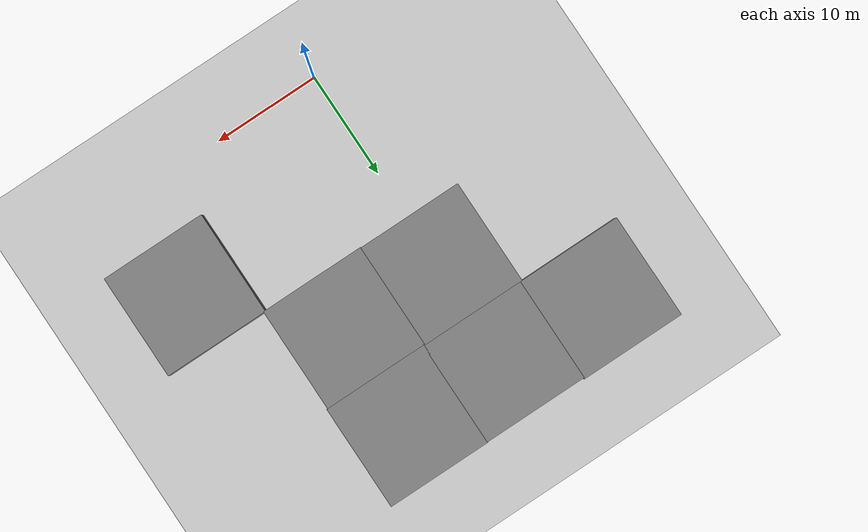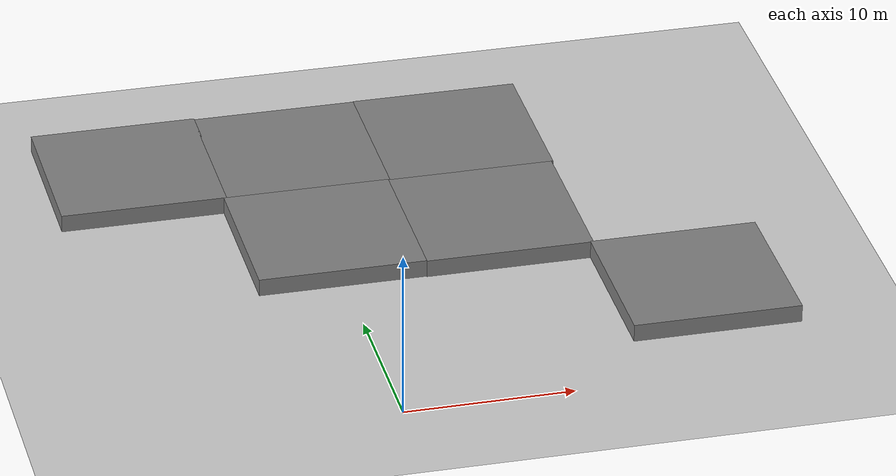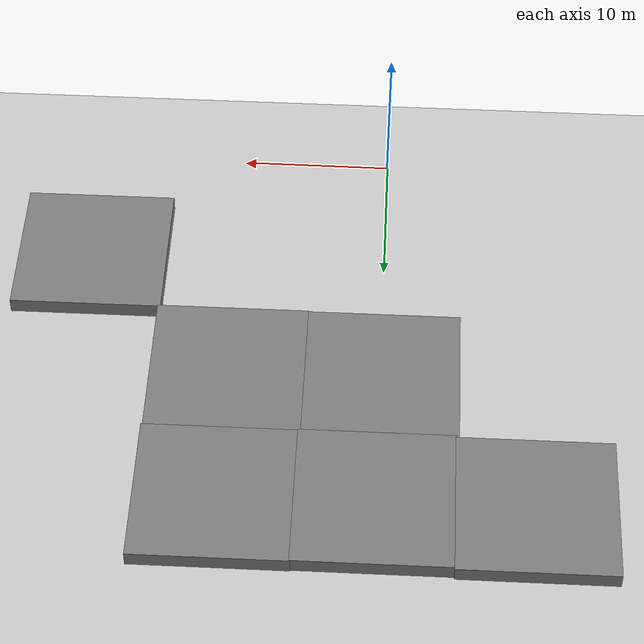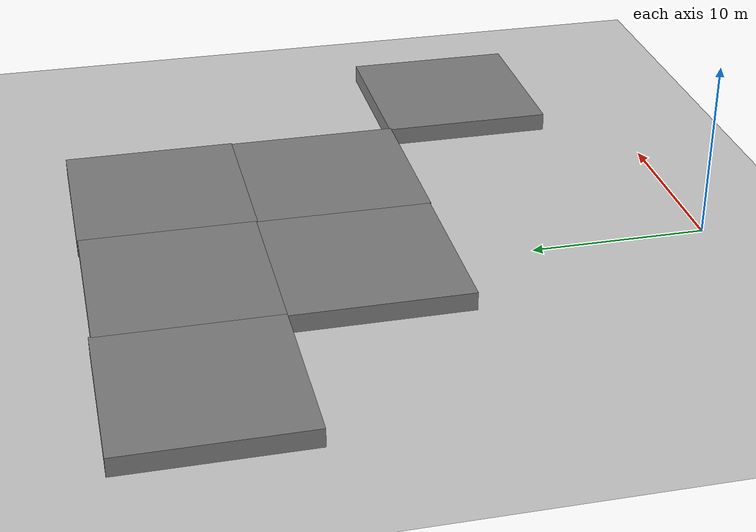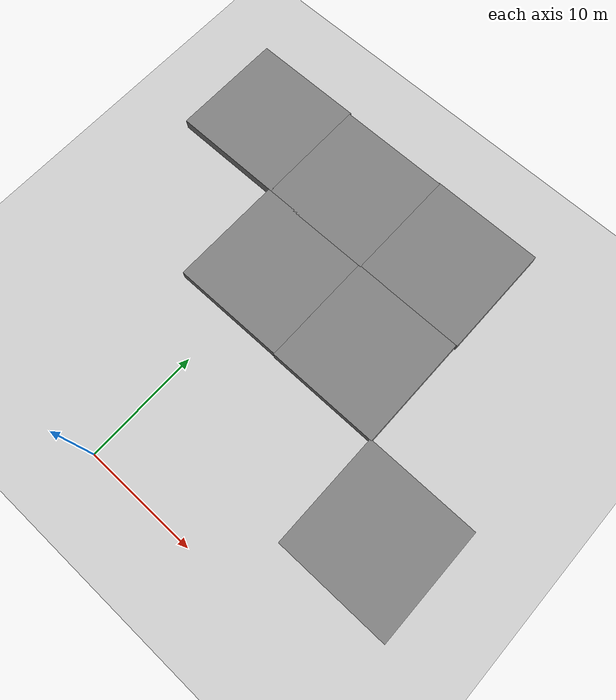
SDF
<sdf version="1.7">
 <world name="default">
  <model name="ground_plane">
   <static>1</static>
   <link name="link">
    <collision name="collision">
     <geometry><plane><normal>0 0 1</normal><size>100 100</size></plane></geometry>
     <surface>
      <contact><collide_bitmask>65535</collide_bitmask></contact>
      <friction><ode><mu>100</mu><mu2>50</mu2></ode></friction>
     </surface>
    </collision>
    <visual name="visual">
     <cast_shadows>0</cast_shadows>
     <geometry><plane><normal>0 0 1</normal><size>100 100</size></plane></geometry>
     <material>
      <script><uri>file://media/materials/scripts/gazebo.material</uri><name>Gazebo/Grey</name></script>
     </material>
    </visual>
   </link>
  </model>
  <model name="farm_clone_0_clone_1_clone_1_clone_19">
   <link name="link">
    <inertial>
     <mass>1</mass>
     <inertia><ixx>1</ixx><ixy>0</ixy><ixz>0</ixz><iyy>1</iyy><iyz>0</iyz><izz>1</izz></inertia>
    </inertial>
    <visual name="visual_1">
     <pose>2 2.5 0 0 -0 0</pose>
     <cast_shadows>0</cast_shadows>
     <geometry><box><size>10 10 2</size></box></geometry>
     <material>
      <script>
       <uri>model://mud_box/materials/scripts</uri>
       <uri>model://mud_box/materials/textures</uri>
       <name>vrc/mud</name>
      </script>
      <shader type="pixel"><normal_map>__default__</normal_map></shader>
      <ambient>0.5 0.5 0.5 1</ambient>
      <diffuse>0.5 0.5 0.5 1</diffuse>
      <specular>0.2 0.2 0.2 1</specular>
      <emissive>0 0 0 1</emissive>
     </material>
    </visual>
    <visual name="visual_2">
     <pose>2 2.5 0 0 -0 0</pose>
     <cast_shadows>0</cast_shadows>
     <geometry><box><size>10 10 2</size></box></geometry>
     <material>
      <script>
       <uri>model://mud_box/materials/scripts</uri>
       <uri>model://mud_box/materials/textures</uri>
       <name>vrc/mud</name>
      </script>
      <shader type="pixel"><normal_map>__default__</normal_map></shader>
      <ambient>0.5 0.5 0.5 1</ambient>
      <diffuse>0.5 0.5 0.5 1</diffuse>
      <specular>0.2 0.2 0.2 1</specular>
      <emissive>0 0 0 1</emissive>
     </material>
    </visual>
    <visual name="visual_4">
     <pose>2 2.5 0 0 -0 0</pose>
     <cast_shadows>0</cast_shadows>
     <geometry><box><size>10 10 2</size></box></geometry>
     <material>
      <script>
       <uri>model://mud_box/materials/scripts</uri>
       <uri>model://mud_box/materials/textures</uri>
       <name>vrc/mud</name>
      </script>
      <shader type="pixel"><normal_map>__default__</normal_map></shader>
      <ambient>0.5 0.5 0.5 1</ambient>
      <diffuse>0.5 0.5 0.5 1</diffuse>
      <specular>0.2 0.2 0.2 1</specular>
      <emissive>0 0 0 1</emissive>
     </material>
    </visual>
    <visual name="visual_3">
     <pose>2 2.5 0 0 -0 0</pose>
     <cast_shadows>0</cast_shadows>
     <geometry><box><size>10 10 2</size></box></geometry>
     <material>
      <script>
       <uri>model://mud_box/materials/scripts</uri>
       <uri>model://mud_box/materials/textures</uri>
       <name>vrc/mud</name>
      </script>
      <shader type="pixel"><normal_map>__default__</normal_map></shader>
      <ambient>0.5 0.5 0.5 1</ambient>
      <diffuse>0.5 0.5 0.5 1</diffuse>
      <specular>0.2 0.2 0.2 1</specular>
      <emissive>0 0 0 1</emissive>
     </material>
    </visual>
    <collision name="collision">
     <laser_retro>0.3</laser_retro>
     <pose>2 2.5 0 0 -0 0</pose>
     <geometry><box><size>100 100 2</size></box></geometry>
     <surface>
      <friction>
       <ode><mu>1.2</mu><mu2>1.2</mu2><fdir1>0 0 0</fdir1><slip1>0.01</slip1><slip2>0.01</slip2></ode>
       <torsional>
        <coefficient>0.05</coefficient>
        <patch_radius>0.08</patch_radius>
        <surface_radius>0.05</surface_radius>
        <use_patch_radius>1</use_patch_radius>
        <ode><slip>0</slip></ode>
       </torsional>
      </friction>
      <bounce><restitution_coefficient>0</restitution_coefficient><threshold>1</threshold></bounce>
      <contact>
       <collide_without_contact>0</collide_without_contact>
       <collide_without_contact_bitmask>1</collide_without_contact_bitmask>
       <collide_bitmask>1</collide_bitmask>
       <ode>
        <soft_cfm>0</soft_cfm>
        <soft_erp>1</soft_erp>
        <kp>1e+07</kp>
        <kd>5000</kd>
        <max_vel>0.001</max_vel>
        <min_depth>0.0005</min_depth>
       </ode>
       <bullet>
        <split_impulse>1</split_impulse>
        <split_impulse_penetration_threshold>-0.01</split_impulse_penetration_threshold>
        <soft_cfm>0</soft_cfm>
        <soft_erp>1</soft_erp>
        <kp>1e+07</kp>
        <kd>5000</kd>
       </bullet>
      </contact>
     </surface>
    </collision>
   </link>
   <static>1</static>
   <pose>17.6547 7.17456 0 0 -0 0</pose>
  </model>
  <model name="farm_clone_0_clone_1_clone_1_clone_22">
   <link name="link">
    <inertial>
     <mass>1</mass>
     <inertia><ixx>1</ixx><ixy>0</ixy><ixz>0</ixz><iyy>1</iyy><iyz>0</iyz><izz>1</izz></inertia>
    </inertial>
    <visual name="visual_1">
     <pose>2 2.5 0 0 -0 0</pose>
     <cast_shadows>0</cast_shadows>
     <geometry><box><size>10 10 2</size></box></geometry>
     <material>
      <script>
       <uri>model://mud_box/materials/scripts</uri>
       <uri>model://mud_box/materials/textures</uri>
       <name>vrc/mud</name>
      </script>
      <shader type="pixel"><normal_map>__default__</normal_map></shader>
      <ambient>0.5 0.5 0.5 1</ambient>
      <diffuse>0.5 0.5 0.5 1</diffuse>
      <specular>0.2 0.2 0.2 1</specular>
      <emissive>0 0 0 1</emissive>
     </material>
    </visual>
    <visual name="visual_2">
     <pose>2 2.5 0 0 -0 0</pose>
     <cast_shadows>0</cast_shadows>
     <geometry><box><size>10 10 2</size></box></geometry>
     <material>
      <script>
       <uri>model://mud_box/materials/scripts</uri>
       <uri>model://mud_box/materials/textures</uri>
       <name>vrc/mud</name>
      </script>
      <shader type="pixel"><normal_map>__default__</normal_map></shader>
      <ambient>0.5 0.5 0.5 1</ambient>
      <diffuse>0.5 0.5 0.5 1</diffuse>
      <specular>0.2 0.2 0.2 1</specular>
      <emissive>0 0 0 1</emissive>
     </material>
    </visual>
    <visual name="visual_4">
     <pose>2 2.5 0 0 -0 0</pose>
     <cast_shadows>0</cast_shadows>
     <geometry><box><size>10 10 2</size></box></geometry>
     <material>
      <script>
       <uri>model://mud_box/materials/scripts</uri>
       <uri>model://mud_box/materials/textures</uri>
       <name>vrc/mud</name>
      </script>
      <shader type="pixel"><normal_map>__default__</normal_map></shader>
      <ambient>0.5 0.5 0.5 1</ambient>
      <diffuse>0.5 0.5 0.5 1</diffuse>
      <specular>0.2 0.2 0.2 1</specular>
      <emissive>0 0 0 1</emissive>
     </material>
    </visual>
    <visual name="visual_3">
     <pose>2 2.5 0 0 -0 0</pose>
     <cast_shadows>0</cast_shadows>
     <geometry><box><size>10 10 2</size></box></geometry>
     <material>
      <script>
       <uri>model://mud_box/materials/scripts</uri>
       <uri>model://mud_box/materials/textures</uri>
       <name>vrc/mud</name>
      </script>
      <shader type="pixel"><normal_map>__default__</normal_map></shader>
      <ambient>0.5 0.5 0.5 1</ambient>
      <diffuse>0.5 0.5 0.5 1</diffuse>
      <specular>0.2 0.2 0.2 1</specular>
      <emissive>0 0 0 1</emissive>
     </material>
    </visual>
    <collision name="collision">
     <laser_retro>0.3</laser_retro>
     <pose>2 2.5 0 0 -0 0</pose>
     <geometry><box><size>100 100 2</size></box></geometry>
     <surface>
      <friction>
       <ode><mu>1.2</mu><mu2>1.2</mu2><fdir1>0 0 0</fdir1><slip1>0.01</slip1><slip2>0.01</slip2></ode>
       <torsional>
        <coefficient>0.05</coefficient>
        <patch_radius>0.08</patch_radius>
        <surface_radius>0.05</surface_radius>
        <use_patch_radius>1</use_patch_radius>
        <ode><slip>0</slip></ode>
       </torsional>
      </friction>
      <bounce><restitution_coefficient>0</restitution_coefficient><threshold>1</threshold></bounce>
      <contact>
       <collide_without_contact>0</collide_without_contact>
       <collide_without_contact_bitmask>1</collide_without_contact_bitmask>
       <collide_bitmask>1</collide_bitmask>
       <ode>
        <soft_cfm>0</soft_cfm>
        <soft_erp>1</soft_erp>
        <kp>1e+07</kp>
        <kd>5000</kd>
        <max_vel>0.001</max_vel>
        <min_depth>0.0005</min_depth>
       </ode>
       <bullet>
        <split_impulse>1</split_impulse>
        <split_impulse_penetration_threshold>-0.01</split_impulse_penetration_threshold>
        <soft_cfm>0</soft_cfm>
        <soft_erp>1</soft_erp>
        <kp>1e+07</kp>
        <kd>5000</kd>
       </bullet>
      </contact>
     </surface>
    </collision>
   </link>
   <static>1</static>
   <pose>-2.15251 17.1455 0 0 -0 0</pose>
  </model>
  <model name="farm_clone_0_clone_1_clone_1_clone_23">
   <link name="link">
    <inertial>
     <mass>1</mass>
     <inertia><ixx>1</ixx><ixy>0</ixy><ixz>0</ixz><iyy>1</iyy><iyz>0</iyz><izz>1</izz></inertia>
    </inertial>
    <visual name="visual_1">
     <pose>2 2.5 0 0 -0 0</pose>
     <cast_shadows>0</cast_shadows>
     <geometry><box><size>10 10 2</size></box></geometry>
     <material>
      <script>
       <uri>model://mud_box/materials/scripts</uri>
       <uri>model://mud_box/materials/textures</uri>
       <name>vrc/mud</name>
      </script>
      <shader type="pixel"><normal_map>__default__</normal_map></shader>
      <ambient>0.5 0.5 0.5 1</ambient>
      <diffuse>0.5 0.5 0.5 1</diffuse>
      <specular>0.2 0.2 0.2 1</specular>
      <emissive>0 0 0 1</emissive>
     </material>
    </visual>
    <visual name="visual_2">
     <pose>2 2.5 0 0 -0 0</pose>
     <cast_shadows>0</cast_shadows>
     <geometry><box><size>10 10 2</size></box></geometry>
     <material>
      <script>
       <uri>model://mud_box/materials/scripts</uri>
       <uri>model://mud_box/materials/textures</uri>
       <name>vrc/mud</name>
      </script>
      <shader type="pixel"><normal_map>__default__</normal_map></shader>
      <ambient>0.5 0.5 0.5 1</ambient>
      <diffuse>0.5 0.5 0.5 1</diffuse>
      <specular>0.2 0.2 0.2 1</specular>
      <emissive>0 0 0 1</emissive>
     </material>
    </visual>
    <visual name="visual_4">
     <pose>2 2.5 0 0 -0 0</pose>
     <cast_shadows>0</cast_shadows>
     <geometry><box><size>10 10 2</size></box></geometry>
     <material>
      <script>
       <uri>model://mud_box/materials/scripts</uri>
       <uri>model://mud_box/materials/textures</uri>
       <name>vrc/mud</name>
      </script>
      <shader type="pixel"><normal_map>__default__</normal_map></shader>
      <ambient>0.5 0.5 0.5 1</ambient>
      <diffuse>0.5 0.5 0.5 1</diffuse>
      <specular>0.2 0.2 0.2 1</specular>
      <emissive>0 0 0 1</emissive>
     </material>
    </visual>
    <visual name="visual_3">
     <pose>2 2.5 0 0 -0 0</pose>
     <cast_shadows>0</cast_shadows>
     <geometry><box><size>10 10 2</size></box></geometry>
     <material>
      <script>
       <uri>model://mud_box/materials/scripts</uri>
       <uri>model://mud_box/materials/textures</uri>
       <name>vrc/mud</name>
      </script>
      <shader type="pixel"><normal_map>__default__</normal_map></shader>
      <ambient>0.5 0.5 0.5 1</ambient>
      <diffuse>0.5 0.5 0.5 1</diffuse>
      <specular>0.2 0.2 0.2 1</specular>
      <emissive>0 0 0 1</emissive>
     </material>
    </visual>
    <collision name="collision">
     <laser_retro>0.3</laser_retro>
     <pose>2 2.5 0 0 -0 0</pose>
     <geometry><box><size>100 100 2</size></box></geometry>
     <surface>
      <friction>
       <ode><mu>1.2</mu><mu2>1.2</mu2><fdir1>0 0 0</fdir1><slip1>0.01</slip1><slip2>0.01</slip2></ode>
       <torsional>
        <coefficient>0.05</coefficient>
        <patch_radius>0.08</patch_radius>
        <surface_radius>0.05</surface_radius>
        <use_patch_radius>1</use_patch_radius>
        <ode><slip>0</slip></ode>
       </torsional>
      </friction>
      <bounce><restitution_coefficient>0</restitution_coefficient><threshold>1</threshold></bounce>
      <contact>
       <collide_without_contact>0</collide_without_contact>
       <collide_without_contact_bitmask>1</collide_without_contact_bitmask>
       <collide_bitmask>1</collide_bitmask>
       <ode>
        <soft_cfm>0</soft_cfm>
        <soft_erp>1</soft_erp>
        <kp>1e+07</kp>
        <kd>5000</kd>
        <max_vel>0.001</max_vel>
        <min_depth>0.0005</min_depth>
       </ode>
       <bullet>
        <split_impulse>1</split_impulse>
        <split_impulse_penetration_threshold>-0.01</split_impulse_penetration_threshold>
        <soft_cfm>0</soft_cfm>
        <soft_erp>1</soft_erp>
        <kp>1e+07</kp>
        <kd>5000</kd>
       </bullet>
      </contact>
     </surface>
    </collision>
   </link>
   <static>1</static>
   <pose>7.83272 17.0868 0 0 -0 0</pose>
  </model>
  <model name="farm_clone_0_clone_1_clone_1_clone_49">
   <link name="link">
    <inertial>
     <mass>1</mass>
     <inertia><ixx>1</ixx><ixy>0</ixy><ixz>0</ixz><iyy>1</iyy><iyz>0</iyz><izz>1</izz></inertia>
    </inertial>
    <visual name="visual_1">
     <pose>2 2.5 0 0 -0 0</pose>
     <cast_shadows>0</cast_shadows>
     <geometry><box><size>10 10 2</size></box></geometry>
     <material>
      <script>
       <uri>model://mud_box/materials/scripts</uri>
       <uri>model://mud_box/materials/textures</uri>
       <name>vrc/mud</name>
      </script>
      <shader type="pixel"><normal_map>__default__</normal_map></shader>
      <ambient>0.5 0.5 0.5 1</ambient>
      <diffuse>0.5 0.5 0.5 1</diffuse>
      <specular>0.2 0.2 0.2 1</specular>
      <emissive>0 0 0 1</emissive>
     </material>
    </visual>
    <visual name="visual_2">
     <pose>2 2.5 0 0 -0 0</pose>
     <cast_shadows>0</cast_shadows>
     <geometry><box><size>10 10 2</size></box></geometry>
     <material>
      <script>
       <uri>model://mud_box/materials/scripts</uri>
       <uri>model://mud_box/materials/textures</uri>
       <name>vrc/mud</name>
      </script>
      <shader type="pixel"><normal_map>__default__</normal_map></shader>
      <ambient>0.5 0.5 0.5 1</ambient>
      <diffuse>0.5 0.5 0.5 1</diffuse>
      <specular>0.2 0.2 0.2 1</specular>
      <emissive>0 0 0 1</emissive>
     </material>
    </visual>
    <visual name="visual_4">
     <pose>2 2.5 0 0 -0 0</pose>
     <cast_shadows>0</cast_shadows>
     <geometry><box><size>10 10 2</size></box></geometry>
     <material>
      <script>
       <uri>model://mud_box/materials/scripts</uri>
       <uri>model://mud_box/materials/textures</uri>
       <name>vrc/mud</name>
      </script>
      <shader type="pixel"><normal_map>__default__</normal_map></shader>
      <ambient>0.5 0.5 0.5 1</ambient>
      <diffuse>0.5 0.5 0.5 1</diffuse>
      <specular>0.2 0.2 0.2 1</specular>
      <emissive>0 0 0 1</emissive>
     </material>
    </visual>
    <visual name="visual_3">
     <pose>2 2.5 0 0 -0 0</pose>
     <cast_shadows>0</cast_shadows>
     <geometry><box><size>10 10 2</size></box></geometry>
     <material>
      <script>
       <uri>model://mud_box/materials/scripts</uri>
       <uri>model://mud_box/materials/textures</uri>
       <name>vrc/mud</name>
      </script>
      <shader type="pixel"><normal_map>__default__</normal_map></shader>
      <ambient>0.5 0.5 0.5 1</ambient>
      <diffuse>0.5 0.5 0.5 1</diffuse>
      <specular>0.2 0.2 0.2 1</specular>
      <emissive>0 0 0 1</emissive>
     </material>
    </visual>
    <collision name="collision">
     <laser_retro>0.3</laser_retro>
     <pose>2 2.5 0 0 -0 0</pose>
     <geometry><box><size>100 100 2</size></box></geometry>
     <surface>
      <friction>
       <ode><mu>1.2</mu><mu2>1.2</mu2><fdir1>0 0 0</fdir1><slip1>0.01</slip1><slip2>0.01</slip2></ode>
       <torsional>
        <coefficient>0.05</coefficient>
        <patch_radius>0.08</patch_radius>
        <surface_radius>0.05</surface_radius>
        <use_patch_radius>1</use_patch_radius>
        <ode><slip>0</slip></ode>
       </torsional>
      </friction>
      <bounce><restitution_coefficient>0</restitution_coefficient><threshold>1</threshold></bounce>
      <contact>
       <collide_without_contact>0</collide_without_contact>
       <collide_without_contact_bitmask>1</collide_without_contact_bitmask>
       <collide_bitmask>1</collide_bitmask>
       <ode>
        <soft_cfm>0</soft_cfm>
        <soft_erp>1</soft_erp>
        <kp>1e+07</kp>
        <kd>5000</kd>
        <max_vel>0.001</max_vel>
        <min_depth>0.0005</min_depth>
       </ode>
       <bullet>
        <split_impulse>1</split_impulse>
        <split_impulse_penetration_threshold>-0.01</split_impulse_penetration_threshold>
        <soft_cfm>0</soft_cfm>
        <soft_erp>1</soft_erp>
        <kp>1e+07</kp>
        <kd>5000</kd>
       </bullet>
      </contact>
     </surface>
    </collision>
   </link>
   <static>1</static>
   <pose>7.93224 27.0699 0 0 -0 0</pose>
  </model>
  <model name="farm_clone_0_clone_1_clone_1_clone_50">
   <link name="link">
    <inertial>
     <mass>1</mass>
     <inertia><ixx>1</ixx><ixy>0</ixy><ixz>0</ixz><iyy>1</iyy><iyz>0</iyz><izz>1</izz></inertia>
    </inertial>
    <visual name="visual_1">
     <pose>2 2.5 0 0 -0 0</pose>
     <cast_shadows>0</cast_shadows>
     <geometry><box><size>10 10 2</size></box></geometry>
     <material>
      <script>
       <uri>model://mud_box/materials/scripts</uri>
       <uri>model://mud_box/materials/textures</uri>
       <name>vrc/mud</name>
      </script>
      <shader type="pixel"><normal_map>__default__</normal_map></shader>
      <ambient>0.5 0.5 0.5 1</ambient>
      <diffuse>0.5 0.5 0.5 1</diffuse>
      <specular>0.2 0.2 0.2 1</specular>
      <emissive>0 0 0 1</emissive>
     </material>
    </visual>
    <visual name="visual_2">
     <pose>2 2.5 0 0 -0 0</pose>
     <cast_shadows>0</cast_shadows>
     <geometry><box><size>10 10 2</size></box></geometry>
     <material>
      <script>
       <uri>model://mud_box/materials/scripts</uri>
       <uri>model://mud_box/materials/textures</uri>
       <name>vrc/mud</name>
      </script>
      <shader type="pixel"><normal_map>__default__</normal_map></shader>
      <ambient>0.5 0.5 0.5 1</ambient>
      <diffuse>0.5 0.5 0.5 1</diffuse>
      <specular>0.2 0.2 0.2 1</specular>
      <emissive>0 0 0 1</emissive>
     </material>
    </visual>
    <visual name="visual_4">
     <pose>2 2.5 0 0 -0 0</pose>
     <cast_shadows>0</cast_shadows>
     <geometry><box><size>10 10 2</size></box></geometry>
     <material>
      <script>
       <uri>model://mud_box/materials/scripts</uri>
       <uri>model://mud_box/materials/textures</uri>
       <name>vrc/mud</name>
      </script>
      <shader type="pixel"><normal_map>__default__</normal_map></shader>
      <ambient>0.5 0.5 0.5 1</ambient>
      <diffuse>0.5 0.5 0.5 1</diffuse>
      <specular>0.2 0.2 0.2 1</specular>
      <emissive>0 0 0 1</emissive>
     </material>
    </visual>
    <visual name="visual_3">
     <pose>2 2.5 0 0 -0 0</pose>
     <cast_shadows>0</cast_shadows>
     <geometry><box><size>10 10 2</size></box></geometry>
     <material>
      <script>
       <uri>model://mud_box/materials/scripts</uri>
       <uri>model://mud_box/materials/textures</uri>
       <name>vrc/mud</name>
      </script>
      <shader type="pixel"><normal_map>__default__</normal_map></shader>
      <ambient>0.5 0.5 0.5 1</ambient>
      <diffuse>0.5 0.5 0.5 1</diffuse>
      <specular>0.2 0.2 0.2 1</specular>
      <emissive>0 0 0 1</emissive>
     </material>
    </visual>
    <collision name="collision">
     <laser_retro>0.3</laser_retro>
     <pose>2 2.5 0 0 -0 0</pose>
     <geometry><box><size>100 100 2</size></box></geometry>
     <surface>
      <friction>
       <ode><mu>1.2</mu><mu2>1.2</mu2><fdir1>0 0 0</fdir1><slip1>0.01</slip1><slip2>0.01</slip2></ode>
       <torsional>
        <coefficient>0.05</coefficient>
        <patch_radius>0.08</patch_radius>
        <surface_radius>0.05</surface_radius>
        <use_patch_radius>1</use_patch_radius>
        <ode><slip>0</slip></ode>
       </torsional>
      </friction>
      <bounce><restitution_coefficient>0</restitution_coefficient><threshold>1</threshold></bounce>
      <contact>
       <collide_without_contact>0</collide_without_contact>
       <collide_without_contact_bitmask>1</collide_without_contact_bitmask>
       <collide_bitmask>1</collide_bitmask>
       <ode>
        <soft_cfm>0</soft_cfm>
        <soft_erp>1</soft_erp>
        <kp>1e+07</kp>
        <kd>5000</kd>
        <max_vel>0.001</max_vel>
        <min_depth>0.0005</min_depth>
       </ode>
       <bullet>
        <split_impulse>1</split_impulse>
        <split_impulse_penetration_threshold>-0.01</split_impulse_penetration_threshold>
        <soft_cfm>0</soft_cfm>
        <soft_erp>1</soft_erp>
        <kp>1e+07</kp>
        <kd>5000</kd>
       </bullet>
      </contact>
     </surface>
    </collision>
   </link>
   <static>1</static>
   <pose>-1.97399 27.0202 0 0 -0 0</pose>
  </model>
  <model name="farm_clone_0_clone_1_clone_1_clone_51">
   <link name="link">
    <inertial>
     <mass>1</mass>
     <inertia><ixx>1</ixx><ixy>0</ixy><ixz>0</ixz><iyy>1</iyy><iyz>0</iyz><izz>1</izz></inertia>
    </inertial>
    <visual name="visual_1">
     <pose>2 2.5 0 0 -0 0</pose>
     <cast_shadows>0</cast_shadows>
     <geometry><box><size>10 10 2</size></box></geometry>
     <material>
      <script>
       <uri>model://mud_box/materials/scripts</uri>
       <uri>model://mud_box/materials/textures</uri>
       <name>vrc/mud</name>
      </script>
      <shader type="pixel"><normal_map>__default__</normal_map></shader>
      <ambient>0.5 0.5 0.5 1</ambient>
      <diffuse>0.5 0.5 0.5 1</diffuse>
      <specular>0.2 0.2 0.2 1</specular>
      <emissive>0 0 0 1</emissive>
     </material>
    </visual>
    <visual name="visual_2">
     <pose>2 2.5 0 0 -0 0</pose>
     <cast_shadows>0</cast_shadows>
     <geometry><box><size>10 10 2</size></box></geometry>
     <material>
      <script>
       <uri>model://mud_box/materials/scripts</uri>
       <uri>model://mud_box/materials/textures</uri>
       <name>vrc/mud</name>
      </script>
      <shader type="pixel"><normal_map>__default__</normal_map></shader>
      <ambient>0.5 0.5 0.5 1</ambient>
      <diffuse>0.5 0.5 0.5 1</diffuse>
      <specular>0.2 0.2 0.2 1</specular>
      <emissive>0 0 0 1</emissive>
     </material>
    </visual>
    <visual name="visual_4">
     <pose>2 2.5 0 0 -0 0</pose>
     <cast_shadows>0</cast_shadows>
     <geometry><box><size>10 10 2</size></box></geometry>
     <material>
      <script>
       <uri>model://mud_box/materials/scripts</uri>
       <uri>model://mud_box/materials/textures</uri>
       <name>vrc/mud</name>
      </script>
      <shader type="pixel"><normal_map>__default__</normal_map></shader>
      <ambient>0.5 0.5 0.5 1</ambient>
      <diffuse>0.5 0.5 0.5 1</diffuse>
      <specular>0.2 0.2 0.2 1</specular>
      <emissive>0 0 0 1</emissive>
     </material>
    </visual>
    <visual name="visual_3">
     <pose>2 2.5 0 0 -0 0</pose>
     <cast_shadows>0</cast_shadows>
     <geometry><box><size>10 10 2</size></box></geometry>
     <material>
      <script>
       <uri>model://mud_box/materials/scripts</uri>
       <uri>model://mud_box/materials/textures</uri>
       <name>vrc/mud</name>
      </script>
      <shader type="pixel"><normal_map>__default__</normal_map></shader>
      <ambient>0.5 0.5 0.5 1</ambient>
      <diffuse>0.5 0.5 0.5 1</diffuse>
      <specular>0.2 0.2 0.2 1</specular>
      <emissive>0 0 0 1</emissive>
     </material>
    </visual>
    <collision name="collision">
     <laser_retro>0.3</laser_retro>
     <pose>2 2.5 0 0 -0 0</pose>
     <geometry><box><size>100 100 2</size></box></geometry>
     <surface>
      <friction>
       <ode><mu>1.2</mu><mu2>1.2</mu2><fdir1>0 0 0</fdir1><slip1>0.01</slip1><slip2>0.01</slip2></ode>
       <torsional>
        <coefficient>0.05</coefficient>
        <patch_radius>0.08</patch_radius>
        <surface_radius>0.05</surface_radius>
        <use_patch_radius>1</use_patch_radius>
        <ode><slip>0</slip></ode>
       </torsional>
      </friction>
      <bounce><restitution_coefficient>0</restitution_coefficient><threshold>1</threshold></bounce>
      <contact>
       <collide_without_contact>0</collide_without_contact>
       <collide_without_contact_bitmask>1</collide_without_contact_bitmask>
       <collide_bitmask>1</collide_bitmask>
       <ode>
        <soft_cfm>0</soft_cfm>
        <soft_erp>1</soft_erp>
        <kp>1e+07</kp>
        <kd>5000</kd>
        <max_vel>0.001</max_vel>
        <min_depth>0.0005</min_depth>
       </ode>
       <bullet>
        <split_impulse>1</split_impulse>
        <split_impulse_penetration_threshold>-0.01</split_impulse_penetration_threshold>
        <soft_cfm>0</soft_cfm>
        <soft_erp>1</soft_erp>
        <kp>1e+07</kp>
        <kd>5000</kd>
       </bullet>
      </contact>
     </surface>
    </collision>
   </link>
   <static>1</static>
   <pose>-11.9063 27.1457 0 0 -0 0</pose>
  </model>
 </world>
</sdf>
